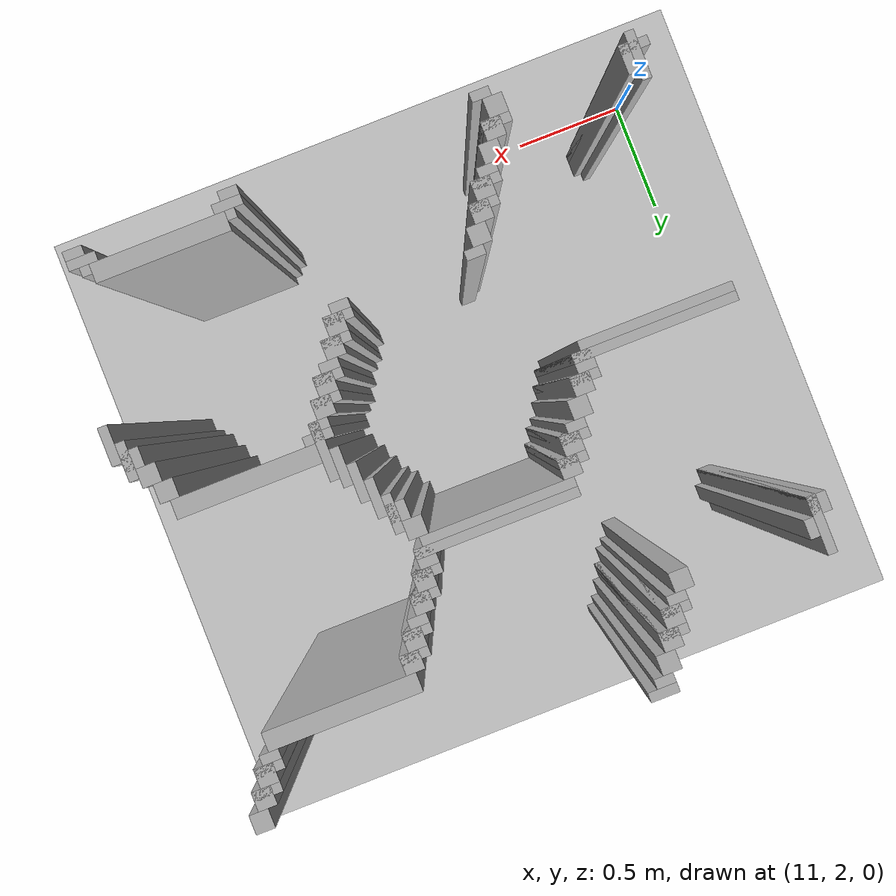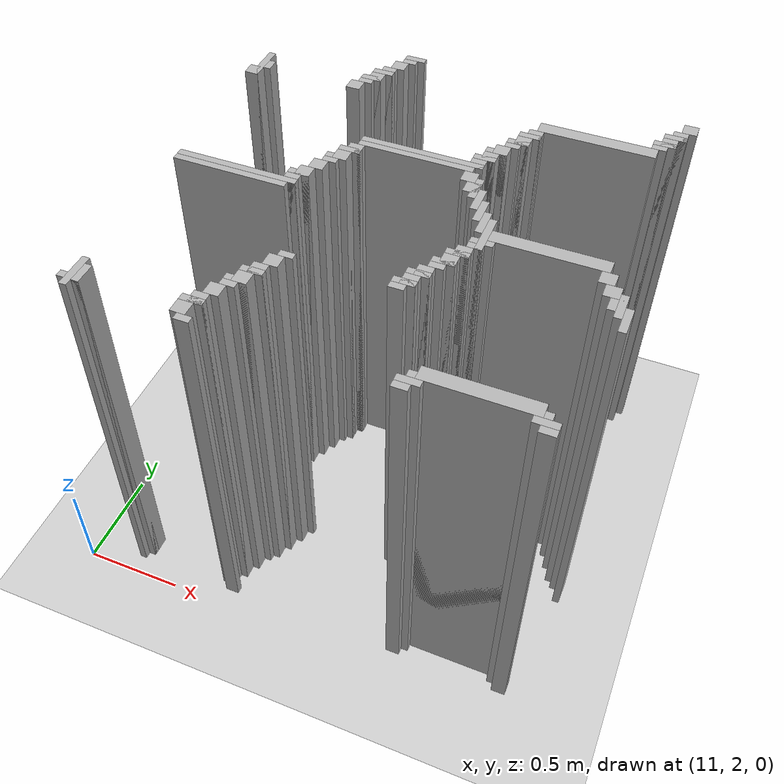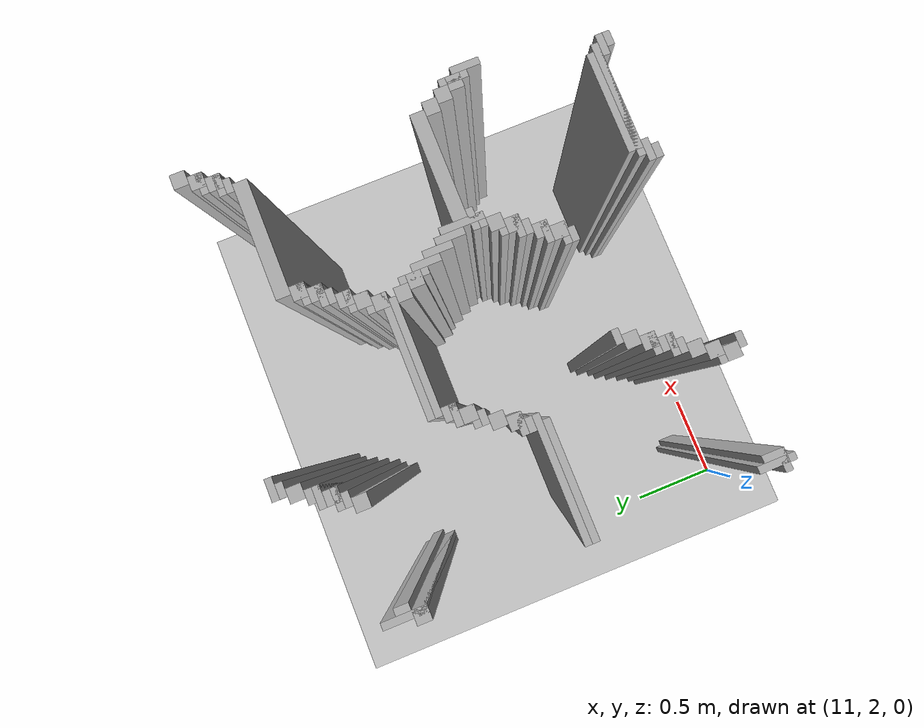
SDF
<sdf version="1.6">
 <world name="slam_world">
  <model name="ground_plane">
   <static>true</static>
   <link name="link">
    <collision name="collision">
     <geometry><plane><normal>0 0 1</normal><size>100 100</size></plane></geometry>
    </collision>
    <visual name="visual">
     <geometry><plane><normal>0 0 1</normal><size>100 100</size></plane></geometry>
     <material>
      <ambient>0.8 0.8 0.8 1</ambient>
      <diffuse>0.8 0.8 0.8 1</diffuse>
      <specular>0.8 0.8 0.8 1</specular>
     </material>
    </visual>
   </link>
  </model>
  <model name="wall_4467">
   <static>true</static>
   <pose>11.95475638051044 4.193735498839907 1.0 0 0 0</pose>
   <link name="link">
    <collision name="collision">
     <geometry><box><size>0.10440835266821345 0.03480278422273782 2.0</size></box></geometry>
    </collision>
    <visual name="visual">
     <geometry><box><size>0.10440835266821345 0.03480278422273782 2.0</size></box></geometry>
     <material><ambient>0.5 0.5 0.5 1</ambient><diffuse>0.7 0.7 0.7 1</diffuse></material>
    </visual>
   </link>
  </model>
  <model name="wall_4477">
   <static>true</static>
   <pose>11.937354988399072 4.158932714617169 1.0 0 0 0</pose>
   <link name="link">
    <collision name="collision">
     <geometry><box><size>0.06960556844547564 0.03480278422273782 2.0</size></box></geometry>
    </collision>
    <visual name="visual">
     <geometry><box><size>0.06960556844547564 0.03480278422273782 2.0</size></box></geometry>
     <material><ambient>0.5 0.5 0.5 1</ambient><diffuse>0.7 0.7 0.7 1</diffuse></material>
    </visual>
   </link>
  </model>
  <model name="wall_4492">
   <static>true</static>
   <pose>11.902552204176333 4.106728538283062 1.0 0 0 0</pose>
   <link name="link">
    <collision name="collision">
     <geometry><box><size>0.06960556844547564 0.06960556844547564 2.0</size></box></geometry>
    </collision>
    <visual name="visual">
     <geometry><box><size>0.06960556844547564 0.06960556844547564 2.0</size></box></geometry>
     <material><ambient>0.5 0.5 0.5 1</ambient><diffuse>0.7 0.7 0.7 1</diffuse></material>
    </visual>
   </link>
  </model>
  <model name="wall_4493">
   <static>true</static>
   <pose>13.364269141531322 4.106728538283062 1.0 0 0 0</pose>
   <link name="link">
    <collision name="collision">
     <geometry><box><size>0.06960556844547564 0.06960556844547564 2.0</size></box></geometry>
    </collision>
    <visual name="visual">
     <geometry><box><size>0.06960556844547564 0.06960556844547564 2.0</size></box></geometry>
     <material><ambient>0.5 0.5 0.5 1</ambient><diffuse>0.7 0.7 0.7 1</diffuse></material>
    </visual>
   </link>
  </model>
  <model name="wall_4507">
   <static>true</static>
   <pose>11.867749419953595 4.037122969837587 1.0 0 0 0</pose>
   <link name="link">
    <collision name="collision">
     <geometry><box><size>0.06960556844547564 0.06960556844547564 2.0</size></box></geometry>
    </collision>
    <visual name="visual">
     <geometry><box><size>0.06960556844547564 0.06960556844547564 2.0</size></box></geometry>
     <material><ambient>0.5 0.5 0.5 1</ambient><diffuse>0.7 0.7 0.7 1</diffuse></material>
    </visual>
   </link>
  </model>
  <model name="wall_4508">
   <static>true</static>
   <pose>13.329466357308585 4.037122969837587 1.0 0 0 0</pose>
   <link name="link">
    <collision name="collision">
     <geometry><box><size>0.06960556844547564 0.06960556844547564 2.0</size></box></geometry>
    </collision>
    <visual name="visual">
     <geometry><box><size>0.06960556844547564 0.06960556844547564 2.0</size></box></geometry>
     <material><ambient>0.5 0.5 0.5 1</ambient><diffuse>0.7 0.7 0.7 1</diffuse></material>
    </visual>
   </link>
  </model>
  <model name="wall_4522">
   <static>true</static>
   <pose>11.850348027842227 4.019721577726218 1.0 0 0 0</pose>
   <link name="link">
    <collision name="collision">
     <geometry><box><size>0.10440835266821345 0.03480278422273782 2.0</size></box></geometry>
    </collision>
    <visual name="visual">
     <geometry><box><size>0.10440835266821345 0.03480278422273782 2.0</size></box></geometry>
     <material><ambient>0.5 0.5 0.5 1</ambient><diffuse>0.7 0.7 0.7 1</diffuse></material>
    </visual>
   </link>
  </model>
  <model name="wall_4523">
   <static>true</static>
   <pose>13.312064965197216 4.019721577726218 1.0 0 0 0</pose>
   <link name="link">
    <collision name="collision">
     <geometry><box><size>0.10440835266821345 0.03480278422273782 2.0</size></box></geometry>
    </collision>
    <visual name="visual">
     <geometry><box><size>0.10440835266821345 0.03480278422273782 2.0</size></box></geometry>
     <material><ambient>0.5 0.5 0.5 1</ambient><diffuse>0.7 0.7 0.7 1</diffuse></material>
    </visual>
   </link>
  </model>
  <model name="wall_4531">
   <static>true</static>
   <pose>11.832946635730858 3.967517401392111 1.0 0 0 0</pose>
   <link name="link">
    <collision name="collision">
     <geometry><box><size>0.06960556844547564 0.06960556844547564 2.0</size></box></geometry>
    </collision>
    <visual name="visual">
     <geometry><box><size>0.06960556844547564 0.06960556844547564 2.0</size></box></geometry>
     <material><ambient>0.5 0.5 0.5 1</ambient><diffuse>0.7 0.7 0.7 1</diffuse></material>
    </visual>
   </link>
  </model>
  <model name="wall_4532">
   <static>true</static>
   <pose>13.294663573085847 3.967517401392111 1.0 0 0 0</pose>
   <link name="link">
    <collision name="collision">
     <geometry><box><size>0.06960556844547564 0.06960556844547564 2.0</size></box></geometry>
    </collision>
    <visual name="visual">
     <geometry><box><size>0.06960556844547564 0.06960556844547564 2.0</size></box></geometry>
     <material><ambient>0.5 0.5 0.5 1</ambient><diffuse>0.7 0.7 0.7 1</diffuse></material>
    </visual>
   </link>
  </model>
  <model name="wall_4544">
   <static>true</static>
   <pose>11.258700696055683 3.863109048723898 1.0 0 0 0</pose>
   <link name="link">
    <collision name="collision">
     <geometry><box><size>0.03480278422273782 0.2088167053364269 2.0</size></box></geometry>
    </collision>
    <visual name="visual">
     <geometry><box><size>0.03480278422273782 0.2088167053364269 2.0</size></box></geometry>
     <material><ambient>0.5 0.5 0.5 1</ambient><diffuse>0.7 0.7 0.7 1</diffuse></material>
    </visual>
   </link>
  </model>
  <model name="wall_4545">
   <static>true</static>
   <pose>11.81554524361949 3.9501160092807424 1.0 0 0 0</pose>
   <link name="link">
    <collision name="collision">
     <geometry><box><size>0.10440835266821345 0.03480278422273782 2.0</size></box></geometry>
    </collision>
    <visual name="visual">
     <geometry><box><size>0.10440835266821345 0.03480278422273782 2.0</size></box></geometry>
     <material><ambient>0.5 0.5 0.5 1</ambient><diffuse>0.7 0.7 0.7 1</diffuse></material>
    </visual>
   </link>
  </model>
  <model name="wall_4546">
   <static>true</static>
   <pose>13.277262180974477 3.9501160092807424 1.0 0 0 0</pose>
   <link name="link">
    <collision name="collision">
     <geometry><box><size>0.10440835266821345 0.03480278422273782 2.0</size></box></geometry>
    </collision>
    <visual name="visual">
     <geometry><box><size>0.10440835266821345 0.03480278422273782 2.0</size></box></geometry>
     <material><ambient>0.5 0.5 0.5 1</ambient><diffuse>0.7 0.7 0.7 1</diffuse></material>
    </visual>
   </link>
  </model>
  <model name="wall_4554">
   <static>true</static>
   <pose>11.79814385150812 3.9153132250580045 1.0 0 0 0</pose>
   <link name="link">
    <collision name="collision">
     <geometry><box><size>0.06960556844547564 0.03480278422273782 2.0</size></box></geometry>
    </collision>
    <visual name="visual">
     <geometry><box><size>0.06960556844547564 0.03480278422273782 2.0</size></box></geometry>
     <material><ambient>0.5 0.5 0.5 1</ambient><diffuse>0.7 0.7 0.7 1</diffuse></material>
    </visual>
   </link>
  </model>
  <model name="wall_4555">
   <static>true</static>
   <pose>13.259860788863108 3.9153132250580045 1.0 0 0 0</pose>
   <link name="link">
    <collision name="collision">
     <geometry><box><size>0.06960556844547564 0.03480278422273782 2.0</size></box></geometry>
    </collision>
    <visual name="visual">
     <geometry><box><size>0.06960556844547564 0.03480278422273782 2.0</size></box></geometry>
     <material><ambient>0.5 0.5 0.5 1</ambient><diffuse>0.7 0.7 0.7 1</diffuse></material>
    </visual>
   </link>
  </model>
  <model name="wall_4566">
   <static>true</static>
   <pose>11.293503480278423 3.863109048723898 1.0 0 0 0</pose>
   <link name="link">
    <collision name="collision">
     <geometry><box><size>0.03480278422273782 0.06960556844547564 2.0</size></box></geometry>
    </collision>
    <visual name="visual">
     <geometry><box><size>0.03480278422273782 0.06960556844547564 2.0</size></box></geometry>
     <material><ambient>0.5 0.5 0.5 1</ambient><diffuse>0.7 0.7 0.7 1</diffuse></material>
    </visual>
   </link>
  </model>
  <model name="wall_4567">
   <static>true</static>
   <pose>11.763341067285383 3.863109048723898 1.0 0 0 0</pose>
   <link name="link">
    <collision name="collision">
     <geometry><box><size>0.06960556844547564 0.06960556844547564 2.0</size></box></geometry>
    </collision>
    <visual name="visual">
     <geometry><box><size>0.06960556844547564 0.06960556844547564 2.0</size></box></geometry>
     <material><ambient>0.5 0.5 0.5 1</ambient><diffuse>0.7 0.7 0.7 1</diffuse></material>
    </visual>
   </link>
  </model>
  <model name="wall_4568">
   <static>true</static>
   <pose>12.981438515081207 3.863109048723898 1.0 0 0 0</pose>
   <link name="link">
    <collision name="collision">
     <geometry><box><size>0.5568445475638051 0.06960556844547564 2.0</size></box></geometry>
    </collision>
    <visual name="visual">
     <geometry><box><size>0.5568445475638051 0.06960556844547564 2.0</size></box></geometry>
     <material><ambient>0.5 0.5 0.5 1</ambient><diffuse>0.7 0.7 0.7 1</diffuse></material>
    </visual>
   </link>
  </model>
  <model name="wall_4582">
   <static>true</static>
   <pose>11.241299303944315 3.793503480278422 1.0 0 0 0</pose>
   <link name="link">
    <collision name="collision">
     <geometry><box><size>0.06960556844547564 0.06960556844547564 2.0</size></box></geometry>
    </collision>
    <visual name="visual">
     <geometry><box><size>0.06960556844547564 0.06960556844547564 2.0</size></box></geometry>
     <material><ambient>0.5 0.5 0.5 1</ambient><diffuse>0.7 0.7 0.7 1</diffuse></material>
    </visual>
   </link>
  </model>
  <model name="wall_4583">
   <static>true</static>
   <pose>12.703016241299304 3.793503480278422 1.0 0 0 0</pose>
   <link name="link">
    <collision name="collision">
     <geometry><box><size>0.06960556844547564 0.06960556844547564 2.0</size></box></geometry>
    </collision>
    <visual name="visual">
     <geometry><box><size>0.06960556844547564 0.06960556844547564 2.0</size></box></geometry>
     <material><ambient>0.5 0.5 0.5 1</ambient><diffuse>0.7 0.7 0.7 1</diffuse></material>
    </visual>
   </link>
  </model>
  <model name="wall_4597">
   <static>true</static>
   <pose>12.685614849187935 3.776102088167053 1.0 0 0 0</pose>
   <link name="link">
    <collision name="collision">
     <geometry><box><size>0.10440835266821345 0.03480278422273782 2.0</size></box></geometry>
    </collision>
    <visual name="visual">
     <geometry><box><size>0.10440835266821345 0.03480278422273782 2.0</size></box></geometry>
     <material><ambient>0.5 0.5 0.5 1</ambient><diffuse>0.7 0.7 0.7 1</diffuse></material>
    </visual>
   </link>
  </model>
  <model name="wall_4611">
   <static>true</static>
   <pose>12.668213457076565 3.7238979118329465 1.0 0 0 0</pose>
   <link name="link">
    <collision name="collision">
     <geometry><box><size>0.06960556844547564 0.06960556844547564 2.0</size></box></geometry>
    </collision>
    <visual name="visual">
     <geometry><box><size>0.06960556844547564 0.06960556844547564 2.0</size></box></geometry>
     <material><ambient>0.5 0.5 0.5 1</ambient><diffuse>0.7 0.7 0.7 1</diffuse></material>
    </visual>
   </link>
  </model>
  <model name="wall_4625">
   <static>true</static>
   <pose>12.650812064965196 3.706496519721578 1.0 0 0 0</pose>
   <link name="link">
    <collision name="collision">
     <geometry><box><size>0.10440835266821345 0.03480278422273782 2.0</size></box></geometry>
    </collision>
    <visual name="visual">
     <geometry><box><size>0.10440835266821345 0.03480278422273782 2.0</size></box></geometry>
     <material><ambient>0.5 0.5 0.5 1</ambient><diffuse>0.7 0.7 0.7 1</diffuse></material>
    </visual>
   </link>
  </model>
  <model name="wall_4635">
   <static>true</static>
   <pose>12.633410672853827 3.67169373549884 1.0 0 0 0</pose>
   <link name="link">
    <collision name="collision">
     <geometry><box><size>0.06960556844547564 0.03480278422273782 2.0</size></box></geometry>
    </collision>
    <visual name="visual">
     <geometry><box><size>0.06960556844547564 0.03480278422273782 2.0</size></box></geometry>
     <material><ambient>0.5 0.5 0.5 1</ambient><diffuse>0.7 0.7 0.7 1</diffuse></material>
    </visual>
   </link>
  </model>
  <model name="wall_4648">
   <static>true</static>
   <pose>12.59860788863109 3.619489559164733 1.0 0 0 0</pose>
   <link name="link">
    <collision name="collision">
     <geometry><box><size>0.06960556844547564 0.06960556844547564 2.0</size></box></geometry>
    </collision>
    <visual name="visual">
     <geometry><box><size>0.06960556844547564 0.06960556844547564 2.0</size></box></geometry>
     <material><ambient>0.5 0.5 0.5 1</ambient><diffuse>0.7 0.7 0.7 1</diffuse></material>
    </visual>
   </link>
  </model>
  <model name="wall_4658">
   <static>true</static>
   <pose>12.581206496519721 3.602088167053364 1.0 0 0 0</pose>
   <link name="link">
    <collision name="collision">
     <geometry><box><size>0.10440835266821345 0.03480278422273782 2.0</size></box></geometry>
    </collision>
    <visual name="visual">
     <geometry><box><size>0.10440835266821345 0.03480278422273782 2.0</size></box></geometry>
     <material><ambient>0.5 0.5 0.5 1</ambient><diffuse>0.7 0.7 0.7 1</diffuse></material>
    </visual>
   </link>
  </model>
  <model name="wall_4671">
   <static>true</static>
   <pose>12.563805104408353 3.549883990719257 1.0 0 0 0</pose>
   <link name="link">
    <collision name="collision">
     <geometry><box><size>0.06960556844547564 0.06960556844547564 2.0</size></box></geometry>
    </collision>
    <visual name="visual">
     <geometry><box><size>0.06960556844547564 0.06960556844547564 2.0</size></box></geometry>
     <material><ambient>0.5 0.5 0.5 1</ambient><diffuse>0.7 0.7 0.7 1</diffuse></material>
    </visual>
   </link>
  </model>
  <model name="wall_4685">
   <static>true</static>
   <pose>12.546403712296984 3.5324825986078885 1.0 0 0 0</pose>
   <link name="link">
    <collision name="collision">
     <geometry><box><size>0.10440835266821345 0.03480278422273782 2.0</size></box></geometry>
    </collision>
    <visual name="visual">
     <geometry><box><size>0.10440835266821345 0.03480278422273782 2.0</size></box></geometry>
     <material><ambient>0.5 0.5 0.5 1</ambient><diffuse>0.7 0.7 0.7 1</diffuse></material>
    </visual>
   </link>
  </model>
  <model name="wall_4695">
   <static>true</static>
   <pose>12.529002320185615 3.480278422273782 1.0 0 0 0</pose>
   <link name="link">
    <collision name="collision">
     <geometry><box><size>0.06960556844547564 0.06960556844547564 2.0</size></box></geometry>
    </collision>
    <visual name="visual">
     <geometry><box><size>0.06960556844547564 0.06960556844547564 2.0</size></box></geometry>
     <material><ambient>0.5 0.5 0.5 1</ambient><diffuse>0.7 0.7 0.7 1</diffuse></material>
    </visual>
   </link>
  </model>
  <model name="wall_4707">
   <static>true</static>
   <pose>12.267981438515081 3.4628770301624128 1.0 0 0 0</pose>
   <link name="link">
    <collision name="collision">
     <geometry><box><size>0.5916473317865429 0.03480278422273782 2.0</size></box></geometry>
    </collision>
    <visual name="visual">
     <geometry><box><size>0.5916473317865429 0.03480278422273782 2.0</size></box></geometry>
     <material><ambient>0.5 0.5 0.5 1</ambient><diffuse>0.7 0.7 0.7 1</diffuse></material>
    </visual>
   </link>
  </model>
  <model name="wall_4718">
   <static>true</static>
   <pose>12.250580046403712 3.428074245939675 1.0 0 0 0</pose>
   <link name="link">
    <collision name="collision">
     <geometry><box><size>0.5568445475638051 0.03480278422273782 2.0</size></box></geometry>
    </collision>
    <visual name="visual">
     <geometry><box><size>0.5568445475638051 0.03480278422273782 2.0</size></box></geometry>
     <material><ambient>0.5 0.5 0.5 1</ambient><diffuse>0.7 0.7 0.7 1</diffuse></material>
    </visual>
   </link>
  </model>
  <model name="wall_4729">
   <static>true</static>
   <pose>11.97215777262181 3.3758700696055683 1.0 0 0 0</pose>
   <link name="link">
    <collision name="collision">
     <geometry><box><size>0.06960556844547564 0.06960556844547564 2.0</size></box></geometry>
    </collision>
    <visual name="visual">
     <geometry><box><size>0.06960556844547564 0.06960556844547564 2.0</size></box></geometry>
     <material><ambient>0.5 0.5 0.5 1</ambient><diffuse>0.7 0.7 0.7 1</diffuse></material>
    </visual>
   </link>
  </model>
  <model name="wall_4730">
   <static>true</static>
   <pose>12.529002320185615 3.3758700696055683 1.0 0 0 0</pose>
   <link name="link">
    <collision name="collision">
     <geometry><box><size>0.06960556844547564 0.06960556844547564 2.0</size></box></geometry>
    </collision>
    <visual name="visual">
     <geometry><box><size>0.06960556844547564 0.06960556844547564 2.0</size></box></geometry>
     <material><ambient>0.5 0.5 0.5 1</ambient><diffuse>0.7 0.7 0.7 1</diffuse></material>
    </visual>
   </link>
  </model>
  <model name="wall_4743">
   <static>true</static>
   <pose>11.95475638051044 3.358468677494199 1.0 0 0 0</pose>
   <link name="link">
    <collision name="collision">
     <geometry><box><size>0.10440835266821345 0.03480278422273782 2.0</size></box></geometry>
    </collision>
    <visual name="visual">
     <geometry><box><size>0.10440835266821345 0.03480278422273782 2.0</size></box></geometry>
     <material><ambient>0.5 0.5 0.5 1</ambient><diffuse>0.7 0.7 0.7 1</diffuse></material>
    </visual>
   </link>
  </model>
  <model name="wall_4744">
   <static>true</static>
   <pose>12.581206496519721 3.3062645011600926 1.0 0 0 0</pose>
   <link name="link">
    <collision name="collision">
     <geometry><box><size>0.03480278422273782 0.13921113689095127 2.0</size></box></geometry>
    </collision>
    <visual name="visual">
     <geometry><box><size>0.03480278422273782 0.13921113689095127 2.0</size></box></geometry>
     <material><ambient>0.5 0.5 0.5 1</ambient><diffuse>0.7 0.7 0.7 1</diffuse></material>
    </visual>
   </link>
  </model>
  <model name="wall_4757">
   <static>true</static>
   <pose>11.937354988399072 3.3062645011600926 1.0 0 0 0</pose>
   <link name="link">
    <collision name="collision">
     <geometry><box><size>0.06960556844547564 0.06960556844547564 2.0</size></box></geometry>
    </collision>
    <visual name="visual">
     <geometry><box><size>0.06960556844547564 0.06960556844547564 2.0</size></box></geometry>
     <material><ambient>0.5 0.5 0.5 1</ambient><diffuse>0.7 0.7 0.7 1</diffuse></material>
    </visual>
   </link>
  </model>
  <model name="wall_4758">
   <static>true</static>
   <pose>12.563805104408353 3.3062645011600926 1.0 0 0 0</pose>
   <link name="link">
    <collision name="collision">
     <geometry><box><size>0.06960556844547564 0.06960556844547564 2.0</size></box></geometry>
    </collision>
    <visual name="visual">
     <geometry><box><size>0.06960556844547564 0.06960556844547564 2.0</size></box></geometry>
     <material><ambient>0.5 0.5 0.5 1</ambient><diffuse>0.7 0.7 0.7 1</diffuse></material>
    </visual>
   </link>
  </model>
  <model name="wall_4771">
   <static>true</static>
   <pose>11.919953596287703 3.288863109048724 1.0 0 0 0</pose>
   <link name="link">
    <collision name="collision">
     <geometry><box><size>0.10440835266821345 0.03480278422273782 2.0</size></box></geometry>
    </collision>
    <visual name="visual">
     <geometry><box><size>0.10440835266821345 0.03480278422273782 2.0</size></box></geometry>
     <material><ambient>0.5 0.5 0.5 1</ambient><diffuse>0.7 0.7 0.7 1</diffuse></material>
    </visual>
   </link>
  </model>
  <model name="wall_4772">
   <static>true</static>
   <pose>12.616009280742459 3.236658932714617 1.0 0 0 0</pose>
   <link name="link">
    <collision name="collision">
     <geometry><box><size>0.03480278422273782 0.13921113689095127 2.0</size></box></geometry>
    </collision>
    <visual name="visual">
     <geometry><box><size>0.03480278422273782 0.13921113689095127 2.0</size></box></geometry>
     <material><ambient>0.5 0.5 0.5 1</ambient><diffuse>0.7 0.7 0.7 1</diffuse></material>
    </visual>
   </link>
  </model>
  <model name="wall_4780">
   <static>true</static>
   <pose>11.902552204176333 3.254060324825986 1.0 0 0 0</pose>
   <link name="link">
    <collision name="collision">
     <geometry><box><size>0.06960556844547564 0.03480278422273782 2.0</size></box></geometry>
    </collision>
    <visual name="visual">
     <geometry><box><size>0.06960556844547564 0.03480278422273782 2.0</size></box></geometry>
     <material><ambient>0.5 0.5 0.5 1</ambient><diffuse>0.7 0.7 0.7 1</diffuse></material>
    </visual>
   </link>
  </model>
  <model name="wall_4792">
   <static>true</static>
   <pose>11.867749419953595 3.201856148491879 1.0 0 0 0</pose>
   <link name="link">
    <collision name="collision">
     <geometry><box><size>0.06960556844547564 0.06960556844547564 2.0</size></box></geometry>
    </collision>
    <visual name="visual">
     <geometry><box><size>0.06960556844547564 0.06960556844547564 2.0</size></box></geometry>
     <material><ambient>0.5 0.5 0.5 1</ambient><diffuse>0.7 0.7 0.7 1</diffuse></material>
    </visual>
   </link>
  </model>
  <model name="wall_4793">
   <static>true</static>
   <pose>12.650812064965196 3.167053364269141 1.0 0 0 0</pose>
   <link name="link">
    <collision name="collision">
     <geometry><box><size>0.03480278422273782 0.13921113689095127 2.0</size></box></geometry>
    </collision>
    <visual name="visual">
     <geometry><box><size>0.03480278422273782 0.13921113689095127 2.0</size></box></geometry>
     <material><ambient>0.5 0.5 0.5 1</ambient><diffuse>0.7 0.7 0.7 1</diffuse></material>
    </visual>
   </link>
  </model>
  <model name="wall_4806">
   <static>true</static>
   <pose>11.832946635730858 3.1322505800464038 1.0 0 0 0</pose>
   <link name="link">
    <collision name="collision">
     <geometry><box><size>0.06960556844547564 0.06960556844547564 2.0</size></box></geometry>
    </collision>
    <visual name="visual">
     <geometry><box><size>0.06960556844547564 0.06960556844547564 2.0</size></box></geometry>
     <material><ambient>0.5 0.5 0.5 1</ambient><diffuse>0.7 0.7 0.7 1</diffuse></material>
    </visual>
   </link>
  </model>
  <model name="wall_4807">
   <static>true</static>
   <pose>12.685614849187935 3.097447795823666 1.0 0 0 0</pose>
   <link name="link">
    <collision name="collision">
     <geometry><box><size>0.03480278422273782 0.13921113689095127 2.0</size></box></geometry>
    </collision>
    <visual name="visual">
     <geometry><box><size>0.03480278422273782 0.13921113689095127 2.0</size></box></geometry>
     <material><ambient>0.5 0.5 0.5 1</ambient><diffuse>0.7 0.7 0.7 1</diffuse></material>
    </visual>
   </link>
  </model>
  <model name="wall_4820">
   <static>true</static>
   <pose>11.81554524361949 3.1148491879350346 1.0 0 0 0</pose>
   <link name="link">
    <collision name="collision">
     <geometry><box><size>0.10440835266821345 0.03480278422273782 2.0</size></box></geometry>
    </collision>
    <visual name="visual">
     <geometry><box><size>0.10440835266821345 0.03480278422273782 2.0</size></box></geometry>
     <material><ambient>0.5 0.5 0.5 1</ambient><diffuse>0.7 0.7 0.7 1</diffuse></material>
    </visual>
   </link>
  </model>
  <model name="wall_4821">
   <static>true</static>
   <pose>12.720417633410673 3.02784222737819 1.0 0 0 0</pose>
   <link name="link">
    <collision name="collision">
     <geometry><box><size>0.03480278422273782 0.2088167053364269 2.0</size></box></geometry>
    </collision>
    <visual name="visual">
     <geometry><box><size>0.03480278422273782 0.2088167053364269 2.0</size></box></geometry>
     <material><ambient>0.5 0.5 0.5 1</ambient><diffuse>0.7 0.7 0.7 1</diffuse></material>
    </visual>
   </link>
  </model>
  <model name="wall_4829">
   <static>true</static>
   <pose>11.79814385150812 3.062645011600928 1.0 0 0 0</pose>
   <link name="link">
    <collision name="collision">
     <geometry><box><size>0.06960556844547564 0.06960556844547564 2.0</size></box></geometry>
    </collision>
    <visual name="visual">
     <geometry><box><size>0.06960556844547564 0.06960556844547564 2.0</size></box></geometry>
     <material><ambient>0.5 0.5 0.5 1</ambient><diffuse>0.7 0.7 0.7 1</diffuse></material>
    </visual>
   </link>
  </model>
  <model name="wall_4843">
   <static>true</static>
   <pose>11.537122969837586 3.045243619489559 1.0 0 0 0</pose>
   <link name="link">
    <collision name="collision">
     <geometry><box><size>0.5916473317865429 0.03480278422273782 2.0</size></box></geometry>
    </collision>
    <visual name="visual">
     <geometry><box><size>0.5916473317865429 0.03480278422273782 2.0</size></box></geometry>
     <material><ambient>0.5 0.5 0.5 1</ambient><diffuse>0.7 0.7 0.7 1</diffuse></material>
    </visual>
   </link>
  </model>
  <model name="wall_4844">
   <static>true</static>
   <pose>12.998839907192576 3.02784222737819 1.0 0 0 0</pose>
   <link name="link">
    <collision name="collision">
     <geometry><box><size>0.5220417633410672 0.06960556844547564 2.0</size></box></geometry>
    </collision>
    <visual name="visual">
     <geometry><box><size>0.5220417633410672 0.06960556844547564 2.0</size></box></geometry>
     <material><ambient>0.5 0.5 0.5 1</ambient><diffuse>0.7 0.7 0.7 1</diffuse></material>
    </visual>
   </link>
  </model>
  <model name="wall_4852">
   <static>true</static>
   <pose>11.519721577726218 3.010440835266821 1.0 0 0 0</pose>
   <link name="link">
    <collision name="collision">
     <geometry><box><size>0.5568445475638051 0.03480278422273782 2.0</size></box></geometry>
    </collision>
    <visual name="visual">
     <geometry><box><size>0.5568445475638051 0.03480278422273782 2.0</size></box></geometry>
     <material><ambient>0.5 0.5 0.5 1</ambient><diffuse>0.7 0.7 0.7 1</diffuse></material>
    </visual>
   </link>
  </model>
  <model name="wall_4866">
   <static>true</static>
   <pose>12.720417633410673 2.975638051044083 1.0 0 0 0</pose>
   <link name="link">
    <collision name="collision">
     <geometry><box><size>0.10440835266821345 0.03480278422273782 2.0</size></box></geometry>
    </collision>
    <visual name="visual">
     <geometry><box><size>0.10440835266821345 0.03480278422273782 2.0</size></box></geometry>
     <material><ambient>0.5 0.5 0.5 1</ambient><diffuse>0.7 0.7 0.7 1</diffuse></material>
    </visual>
   </link>
  </model>
  <model name="wall_4867">
   <static>true</static>
   <pose>13.259860788863108 2.9582366589327145 1.0 0 0 0</pose>
   <link name="link">
    <collision name="collision">
     <geometry><box><size>0.06960556844547564 0.06960556844547564 2.0</size></box></geometry>
    </collision>
    <visual name="visual">
     <geometry><box><size>0.06960556844547564 0.06960556844547564 2.0</size></box></geometry>
     <material><ambient>0.5 0.5 0.5 1</ambient><diffuse>0.7 0.7 0.7 1</diffuse></material>
    </visual>
   </link>
  </model>
  <model name="wall_4871">
   <static>true</static>
   <pose>12.703016241299304 2.9408352668213458 1.0 0 0 0</pose>
   <link name="link">
    <collision name="collision">
     <geometry><box><size>0.06960556844547564 0.03480278422273782 2.0</size></box></geometry>
    </collision>
    <visual name="visual">
     <geometry><box><size>0.06960556844547564 0.03480278422273782 2.0</size></box></geometry>
     <material><ambient>0.5 0.5 0.5 1</ambient><diffuse>0.7 0.7 0.7 1</diffuse></material>
    </visual>
   </link>
  </model>
  <model name="wall_4884">
   <static>true</static>
   <pose>12.668213457076565 2.8886310904872388 1.0 0 0 0</pose>
   <link name="link">
    <collision name="collision">
     <geometry><box><size>0.06960556844547564 0.06960556844547564 2.0</size></box></geometry>
    </collision>
    <visual name="visual">
     <geometry><box><size>0.06960556844547564 0.06960556844547564 2.0</size></box></geometry>
     <material><ambient>0.5 0.5 0.5 1</ambient><diffuse>0.7 0.7 0.7 1</diffuse></material>
    </visual>
   </link>
  </model>
  <model name="wall_4885">
   <static>true</static>
   <pose>13.294663573085847 2.8886310904872388 1.0 0 0 0</pose>
   <link name="link">
    <collision name="collision">
     <geometry><box><size>0.06960556844547564 0.06960556844547564 2.0</size></box></geometry>
    </collision>
    <visual name="visual">
     <geometry><box><size>0.06960556844547564 0.06960556844547564 2.0</size></box></geometry>
     <material><ambient>0.5 0.5 0.5 1</ambient><diffuse>0.7 0.7 0.7 1</diffuse></material>
    </visual>
   </link>
  </model>
  <model name="wall_4900">
   <static>true</static>
   <pose>12.650812064965196 2.87122969837587 1.0 0 0 0</pose>
   <link name="link">
    <collision name="collision">
     <geometry><box><size>0.10440835266821345 0.03480278422273782 2.0</size></box></geometry>
    </collision>
    <visual name="visual">
     <geometry><box><size>0.10440835266821345 0.03480278422273782 2.0</size></box></geometry>
     <material><ambient>0.5 0.5 0.5 1</ambient><diffuse>0.7 0.7 0.7 1</diffuse></material>
    </visual>
   </link>
  </model>
  <model name="wall_4901">
   <static>true</static>
   <pose>13.346867749419953 2.819025522041763 1.0 0 0 0</pose>
   <link name="link">
    <collision name="collision">
     <geometry><box><size>0.03480278422273782 0.13921113689095127 2.0</size></box></geometry>
    </collision>
    <visual name="visual">
     <geometry><box><size>0.03480278422273782 0.13921113689095127 2.0</size></box></geometry>
     <material><ambient>0.5 0.5 0.5 1</ambient><diffuse>0.7 0.7 0.7 1</diffuse></material>
    </visual>
   </link>
  </model>
  <model name="wall_4916">
   <static>true</static>
   <pose>12.633410672853827 2.819025522041763 1.0 0 0 0</pose>
   <link name="link">
    <collision name="collision">
     <geometry><box><size>0.06960556844547564 0.06960556844547564 2.0</size></box></geometry>
    </collision>
    <visual name="visual">
     <geometry><box><size>0.06960556844547564 0.06960556844547564 2.0</size></box></geometry>
     <material><ambient>0.5 0.5 0.5 1</ambient><diffuse>0.7 0.7 0.7 1</diffuse></material>
    </visual>
   </link>
  </model>
  <model name="wall_4917">
   <static>true</static>
   <pose>13.329466357308585 2.819025522041763 1.0 0 0 0</pose>
   <link name="link">
    <collision name="collision">
     <geometry><box><size>0.06960556844547564 0.06960556844547564 2.0</size></box></geometry>
    </collision>
    <visual name="visual">
     <geometry><box><size>0.06960556844547564 0.06960556844547564 2.0</size></box></geometry>
     <material><ambient>0.5 0.5 0.5 1</ambient><diffuse>0.7 0.7 0.7 1</diffuse></material>
    </visual>
   </link>
  </model>
  <model name="wall_4932">
   <static>true</static>
   <pose>12.616009280742459 2.8016241299303943 1.0 0 0 0</pose>
   <link name="link">
    <collision name="collision">
     <geometry><box><size>0.10440835266821345 0.03480278422273782 2.0</size></box></geometry>
    </collision>
    <visual name="visual">
     <geometry><box><size>0.10440835266821345 0.03480278422273782 2.0</size></box></geometry>
     <material><ambient>0.5 0.5 0.5 1</ambient><diffuse>0.7 0.7 0.7 1</diffuse></material>
    </visual>
   </link>
  </model>
  <model name="wall_4933">
   <static>true</static>
   <pose>13.38167053364269 2.7494199535962878 1.0 0 0 0</pose>
   <link name="link">
    <collision name="collision">
     <geometry><box><size>0.03480278422273782 0.13921113689095127 2.0</size></box></geometry>
    </collision>
    <visual name="visual">
     <geometry><box><size>0.03480278422273782 0.13921113689095127 2.0</size></box></geometry>
     <material><ambient>0.5 0.5 0.5 1</ambient><diffuse>0.7 0.7 0.7 1</diffuse></material>
    </visual>
   </link>
  </model>
  <model name="wall_4941">
   <static>true</static>
   <pose>12.59860788863109 2.7668213457076565 1.0 0 0 0</pose>
   <link name="link">
    <collision name="collision">
     <geometry><box><size>0.06960556844547564 0.03480278422273782 2.0</size></box></geometry>
    </collision>
    <visual name="visual">
     <geometry><box><size>0.06960556844547564 0.03480278422273782 2.0</size></box></geometry>
     <material><ambient>0.5 0.5 0.5 1</ambient><diffuse>0.7 0.7 0.7 1</diffuse></material>
    </visual>
   </link>
  </model>
  <model name="wall_4955">
   <static>true</static>
   <pose>12.563805104408353 2.71461716937355 1.0 0 0 0</pose>
   <link name="link">
    <collision name="collision">
     <geometry><box><size>0.06960556844547564 0.06960556844547564 2.0</size></box></geometry>
    </collision>
    <visual name="visual">
     <geometry><box><size>0.06960556844547564 0.06960556844547564 2.0</size></box></geometry>
     <material><ambient>0.5 0.5 0.5 1</ambient><diffuse>0.7 0.7 0.7 1</diffuse></material>
    </visual>
   </link>
  </model>
  <model name="wall_4971">
   <static>true</static>
   <pose>12.546403712296984 2.6972157772621808 1.0 0 0 0</pose>
   <link name="link">
    <collision name="collision">
     <geometry><box><size>0.10440835266821345 0.03480278422273782 2.0</size></box></geometry>
    </collision>
    <visual name="visual">
     <geometry><box><size>0.10440835266821345 0.03480278422273782 2.0</size></box></geometry>
     <material><ambient>0.5 0.5 0.5 1</ambient><diffuse>0.7 0.7 0.7 1</diffuse></material>
    </visual>
   </link>
  </model>
  <model name="wall_4980">
   <static>true</static>
   <pose>12.529002320185615 2.645011600928074 1.0 0 0 0</pose>
   <link name="link">
    <collision name="collision">
     <geometry><box><size>0.06960556844547564 0.06960556844547564 2.0</size></box></geometry>
    </collision>
    <visual name="visual">
     <geometry><box><size>0.06960556844547564 0.06960556844547564 2.0</size></box></geometry>
     <material><ambient>0.5 0.5 0.5 1</ambient><diffuse>0.7 0.7 0.7 1</diffuse></material>
    </visual>
   </link>
  </model>
  <model name="wall_4992">
   <static>true</static>
   <pose>12.511600928074245 2.627610208816705 1.0 0 0 0</pose>
   <link name="link">
    <collision name="collision">
     <geometry><box><size>0.10440835266821345 0.03480278422273782 2.0</size></box></geometry>
    </collision>
    <visual name="visual">
     <geometry><box><size>0.10440835266821345 0.03480278422273782 2.0</size></box></geometry>
     <material><ambient>0.5 0.5 0.5 1</ambient><diffuse>0.7 0.7 0.7 1</diffuse></material>
    </visual>
   </link>
  </model>
  <model name="wall_5004">
   <static>true</static>
   <pose>12.006960556844547 2.5928074245939676 1.0 0 0 0</pose>
   <link name="link">
    <collision name="collision">
     <geometry><box><size>0.06960556844547564 0.03480278422273782 2.0</size></box></geometry>
    </collision>
    <visual name="visual">
     <geometry><box><size>0.06960556844547564 0.03480278422273782 2.0</size></box></geometry>
     <material><ambient>0.5 0.5 0.5 1</ambient><diffuse>0.7 0.7 0.7 1</diffuse></material>
    </visual>
   </link>
  </model>
  <model name="wall_5005">
   <static>true</static>
   <pose>12.494199535962876 2.5928074245939676 1.0 0 0 0</pose>
   <link name="link">
    <collision name="collision">
     <geometry><box><size>0.06960556844547564 0.03480278422273782 2.0</size></box></geometry>
    </collision>
    <visual name="visual">
     <geometry><box><size>0.06960556844547564 0.03480278422273782 2.0</size></box></geometry>
     <material><ambient>0.5 0.5 0.5 1</ambient><diffuse>0.7 0.7 0.7 1</diffuse></material>
    </visual>
   </link>
  </model>
  <model name="wall_5020">
   <static>true</static>
   <pose>11.97215777262181 2.5406032482598606 1.0 0 0 0</pose>
   <link name="link">
    <collision name="collision">
     <geometry><box><size>0.06960556844547564 0.06960556844547564 2.0</size></box></geometry>
    </collision>
    <visual name="visual">
     <geometry><box><size>0.06960556844547564 0.06960556844547564 2.0</size></box></geometry>
     <material><ambient>0.5 0.5 0.5 1</ambient><diffuse>0.7 0.7 0.7 1</diffuse></material>
    </visual>
   </link>
  </model>
  <model name="wall_5044">
   <static>true</static>
   <pose>11.937354988399072 2.470997679814385 1.0 0 0 0</pose>
   <link name="link">
    <collision name="collision">
     <geometry><box><size>0.06960556844547564 0.06960556844547564 2.0</size></box></geometry>
    </collision>
    <visual name="visual">
     <geometry><box><size>0.06960556844547564 0.06960556844547564 2.0</size></box></geometry>
     <material><ambient>0.5 0.5 0.5 1</ambient><diffuse>0.7 0.7 0.7 1</diffuse></material>
    </visual>
   </link>
  </model>
  <model name="wall_5060">
   <static>true</static>
   <pose>11.919953596287703 2.453596287703016 1.0 0 0 0</pose>
   <link name="link">
    <collision name="collision">
     <geometry><box><size>0.10440835266821345 0.03480278422273782 2.0</size></box></geometry>
    </collision>
    <visual name="visual">
     <geometry><box><size>0.10440835266821345 0.03480278422273782 2.0</size></box></geometry>
     <material><ambient>0.5 0.5 0.5 1</ambient><diffuse>0.7 0.7 0.7 1</diffuse></material>
    </visual>
   </link>
  </model>
  <model name="wall_5074">
   <static>true</static>
   <pose>11.902552204176333 2.4013921113689096 1.0 0 0 0</pose>
   <link name="link">
    <collision name="collision">
     <geometry><box><size>0.06960556844547564 0.06960556844547564 2.0</size></box></geometry>
    </collision>
    <visual name="visual">
     <geometry><box><size>0.06960556844547564 0.06960556844547564 2.0</size></box></geometry>
     <material><ambient>0.5 0.5 0.5 1</ambient><diffuse>0.7 0.7 0.7 1</diffuse></material>
    </visual>
   </link>
  </model>
  <model name="wall_5090">
   <static>true</static>
   <pose>11.885150812064964 2.3839907192575405 1.0 0 0 0</pose>
   <link name="link">
    <collision name="collision">
     <geometry><box><size>0.10440835266821345 0.03480278422273782 2.0</size></box></geometry>
    </collision>
    <visual name="visual">
     <geometry><box><size>0.10440835266821345 0.03480278422273782 2.0</size></box></geometry>
     <material><ambient>0.5 0.5 0.5 1</ambient><diffuse>0.7 0.7 0.7 1</diffuse></material>
    </visual>
   </link>
  </model>
  <model name="wall_5099">
   <static>true</static>
   <pose>11.867749419953595 2.3491879350348026 1.0 0 0 0</pose>
   <link name="link">
    <collision name="collision">
     <geometry><box><size>0.06960556844547564 0.03480278422273782 2.0</size></box></geometry>
    </collision>
    <visual name="visual">
     <geometry><box><size>0.06960556844547564 0.03480278422273782 2.0</size></box></geometry>
     <material><ambient>0.5 0.5 0.5 1</ambient><diffuse>0.7 0.7 0.7 1</diffuse></material>
    </visual>
   </link>
  </model>
  <model name="wall_5114">
   <static>true</static>
   <pose>11.832946635730858 2.296983758700696 1.0 0 0 0</pose>
   <link name="link">
    <collision name="collision">
     <geometry><box><size>0.06960556844547564 0.06960556844547564 2.0</size></box></geometry>
    </collision>
    <visual name="visual">
     <geometry><box><size>0.06960556844547564 0.06960556844547564 2.0</size></box></geometry>
     <material><ambient>0.5 0.5 0.5 1</ambient><diffuse>0.7 0.7 0.7 1</diffuse></material>
    </visual>
   </link>
  </model>
  <model name="wall_5129">
   <static>true</static>
   <pose>11.258700696055683 2.1751740139211138 1.0 0 0 0</pose>
   <link name="link">
    <collision name="collision">
     <geometry><box><size>0.03480278422273782 0.17401392111368907 2.0</size></box></geometry>
    </collision>
    <visual name="visual">
     <geometry><box><size>0.03480278422273782 0.17401392111368907 2.0</size></box></geometry>
     <material><ambient>0.5 0.5 0.5 1</ambient><diffuse>0.7 0.7 0.7 1</diffuse></material>
    </visual>
   </link>
  </model>
  <model name="wall_5130">
   <static>true</static>
   <pose>11.79814385150812 2.2273781902552203 1.0 0 0 0</pose>
   <link name="link">
    <collision name="collision">
     <geometry><box><size>0.06960556844547564 0.06960556844547564 2.0</size></box></geometry>
    </collision>
    <visual name="visual">
     <geometry><box><size>0.06960556844547564 0.06960556844547564 2.0</size></box></geometry>
     <material><ambient>0.5 0.5 0.5 1</ambient><diffuse>0.7 0.7 0.7 1</diffuse></material>
    </visual>
   </link>
  </model>
  <model name="wall_5143">
   <static>true</static>
   <pose>11.293503480278423 2.1751740139211138 1.0 0 0 0</pose>
   <link name="link">
    <collision name="collision">
     <geometry><box><size>0.03480278422273782 0.10440835266821345 2.0</size></box></geometry>
    </collision>
    <visual name="visual">
     <geometry><box><size>0.03480278422273782 0.10440835266821345 2.0</size></box></geometry>
     <material><ambient>0.5 0.5 0.5 1</ambient><diffuse>0.7 0.7 0.7 1</diffuse></material>
    </visual>
   </link>
  </model>
  <model name="wall_5144">
   <static>true</static>
   <pose>11.780742459396752 2.2099767981438516 1.0 0 0 0</pose>
   <link name="link">
    <collision name="collision">
     <geometry><box><size>0.10440835266821345 0.03480278422273782 2.0</size></box></geometry>
    </collision>
    <visual name="visual">
     <geometry><box><size>0.10440835266821345 0.03480278422273782 2.0</size></box></geometry>
     <material><ambient>0.5 0.5 0.5 1</ambient><diffuse>0.7 0.7 0.7 1</diffuse></material>
    </visual>
   </link>
  </model>
  <model name="wall_5145">
   <static>true</static>
   <pose>12.981438515081207 2.1925754060324825 1.0 0 0 0</pose>
   <link name="link">
    <collision name="collision">
     <geometry><box><size>0.4872389791183295 0.06960556844547564 2.0</size></box></geometry>
    </collision>
    <visual name="visual">
     <geometry><box><size>0.4872389791183295 0.06960556844547564 2.0</size></box></geometry>
     <material><ambient>0.5 0.5 0.5 1</ambient><diffuse>0.7 0.7 0.7 1</diffuse></material>
    </visual>
   </link>
  </model>
  <model name="wall_5156">
   <static>true</static>
   <pose>11.763341067285383 2.1577726218097446 1.0 0 0 0</pose>
   <link name="link">
    <collision name="collision">
     <geometry><box><size>0.06960556844547564 0.06960556844547564 2.0</size></box></geometry>
    </collision>
    <visual name="visual">
     <geometry><box><size>0.06960556844547564 0.06960556844547564 2.0</size></box></geometry>
     <material><ambient>0.5 0.5 0.5 1</ambient><diffuse>0.7 0.7 0.7 1</diffuse></material>
    </visual>
   </link>
  </model>
  <model name="wall_5157">
   <static>true</static>
   <pose>12.981438515081207 2.1751740139211138 1.0 0 0 0</pose>
   <link name="link">
    <collision name="collision">
     <geometry><box><size>0.5568445475638051 0.03480278422273782 2.0</size></box></geometry>
    </collision>
    <visual name="visual">
     <geometry><box><size>0.5568445475638051 0.03480278422273782 2.0</size></box></geometry>
     <material><ambient>0.5 0.5 0.5 1</ambient><diffuse>0.7 0.7 0.7 1</diffuse></material>
    </visual>
   </link>
  </model>
  <model name="wall_5172">
   <static>true</static>
   <pose>11.258700696055683 2.140371229698376 1.0 0 0 0</pose>
   <link name="link">
    <collision name="collision">
     <geometry><box><size>0.10440835266821345 0.03480278422273782 2.0</size></box></geometry>
    </collision>
    <visual name="visual">
     <geometry><box><size>0.10440835266821345 0.03480278422273782 2.0</size></box></geometry>
     <material><ambient>0.5 0.5 0.5 1</ambient><diffuse>0.7 0.7 0.7 1</diffuse></material>
    </visual>
   </link>
  </model>
  <model name="wall_5174">
   <static>true</static>
   <pose>12.720417633410673 2.140371229698376 1.0 0 0 0</pose>
   <link name="link">
    <collision name="collision">
     <geometry><box><size>0.10440835266821345 0.03480278422273782 2.0</size></box></geometry>
    </collision>
    <visual name="visual">
     <geometry><box><size>0.10440835266821345 0.03480278422273782 2.0</size></box></geometry>
     <material><ambient>0.5 0.5 0.5 1</ambient><diffuse>0.7 0.7 0.7 1</diffuse></material>
    </visual>
   </link>
  </model>
  <model name="wall_5175">
   <static>true</static>
   <pose>13.24245939675174 2.140371229698376 1.0 0 0 0</pose>
   <link name="link">
    <collision name="collision">
     <geometry><box><size>0.10440835266821345 0.03480278422273782 2.0</size></box></geometry>
    </collision>
    <visual name="visual">
     <geometry><box><size>0.10440835266821345 0.03480278422273782 2.0</size></box></geometry>
     <material><ambient>0.5 0.5 0.5 1</ambient><diffuse>0.7 0.7 0.7 1</diffuse></material>
    </visual>
   </link>
  </model>
  <model name="wall_5188">
   <static>true</static>
   <pose>11.79814385150812 2.105568445475638 1.0 0 0 0</pose>
   <link name="link">
    <collision name="collision">
     <geometry><box><size>0.06960556844547564 0.03480278422273782 2.0</size></box></geometry>
    </collision>
    <visual name="visual">
     <geometry><box><size>0.06960556844547564 0.03480278422273782 2.0</size></box></geometry>
     <material><ambient>0.5 0.5 0.5 1</ambient><diffuse>0.7 0.7 0.7 1</diffuse></material>
    </visual>
   </link>
  </model>
  <model name="wall_5189">
   <static>true</static>
   <pose>12.703016241299304 2.105568445475638 1.0 0 0 0</pose>
   <link name="link">
    <collision name="collision">
     <geometry><box><size>0.06960556844547564 0.03480278422273782 2.0</size></box></geometry>
    </collision>
    <visual name="visual">
     <geometry><box><size>0.06960556844547564 0.03480278422273782 2.0</size></box></geometry>
     <material><ambient>0.5 0.5 0.5 1</ambient><diffuse>0.7 0.7 0.7 1</diffuse></material>
    </visual>
   </link>
  </model>
  <model name="wall_5190">
   <static>true</static>
   <pose>13.259860788863108 2.105568445475638 1.0 0 0 0</pose>
   <link name="link">
    <collision name="collision">
     <geometry><box><size>0.06960556844547564 0.03480278422273782 2.0</size></box></geometry>
    </collision>
    <visual name="visual">
     <geometry><box><size>0.06960556844547564 0.03480278422273782 2.0</size></box></geometry>
     <material><ambient>0.5 0.5 0.5 1</ambient><diffuse>0.7 0.7 0.7 1</diffuse></material>
    </visual>
   </link>
  </model>
 </world>
</sdf>
